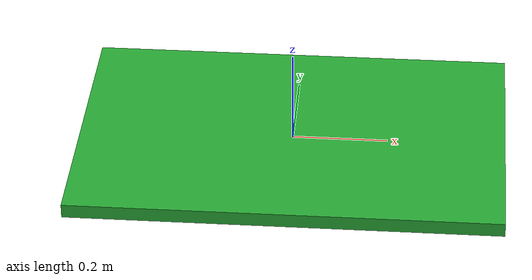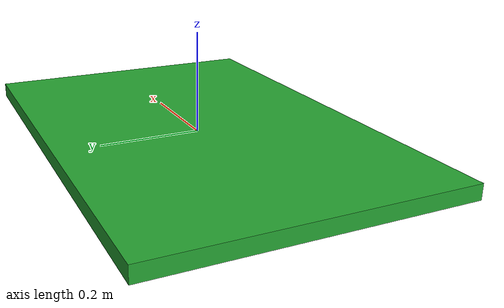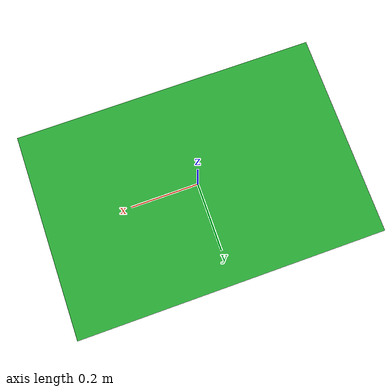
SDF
<?xml version='1.0'?>
<sdf version='1.6'>
  <model name='bin'>
  <static>true</static>
    <link name="bottom">

      <pose>0 0 0 0 0 0</pose>
      <inertial>
        <mass>0.05</mass>
        <inertia>
          <ixx>0.001</ixx>
          <iyy>0.001</iyy>
          <izz>0.001</izz>
        </inertia>
      </inertial>
      <visual name='visual_bottom'>
        <geometry>
          <box>
            <size>0.9 0.6 0.03</size>
          </box>
        </geometry>
        <material>
          <script>
            <uri>file://media/materials/scripts/gazebo.material</uri>
            <name>Gazebo/Green</name>
          </script>
        </material>
      </visual>
      <collision name='collision_bottom'>
        <geometry>
          <box>
            <size>0.9 0.6 0.03</size>
          </box>
        </geometry>
        <surface>
          <friction>
            <ode>
              <mu>10</mu>
              <mu2>10</mu2>
            </ode>
          </friction>
        </surface>
      </collision>
    </link>
</model>
</sdf>
